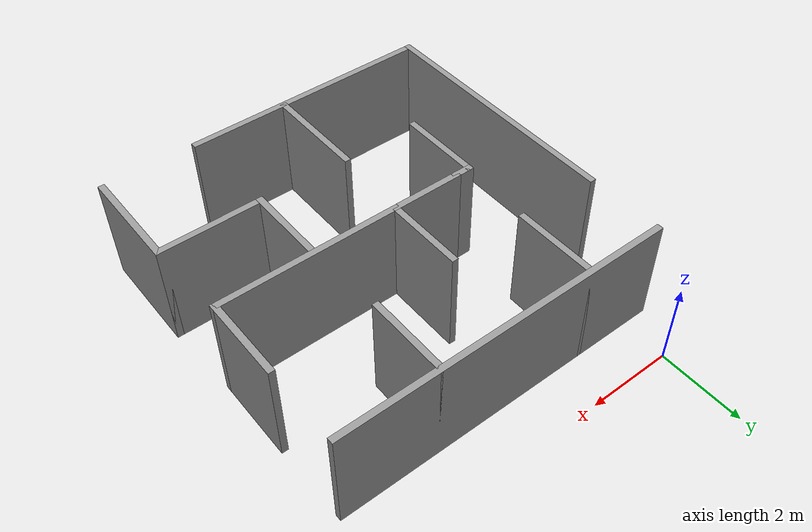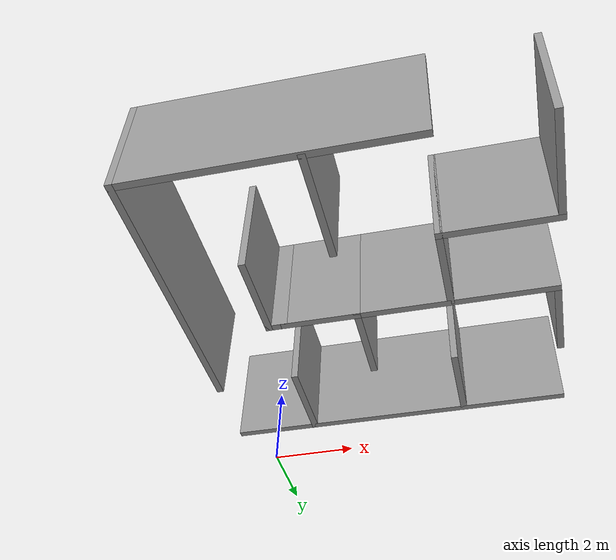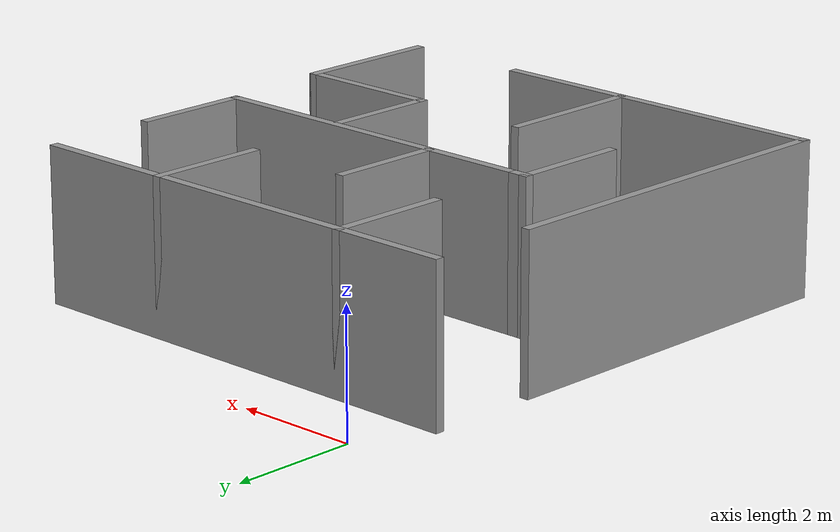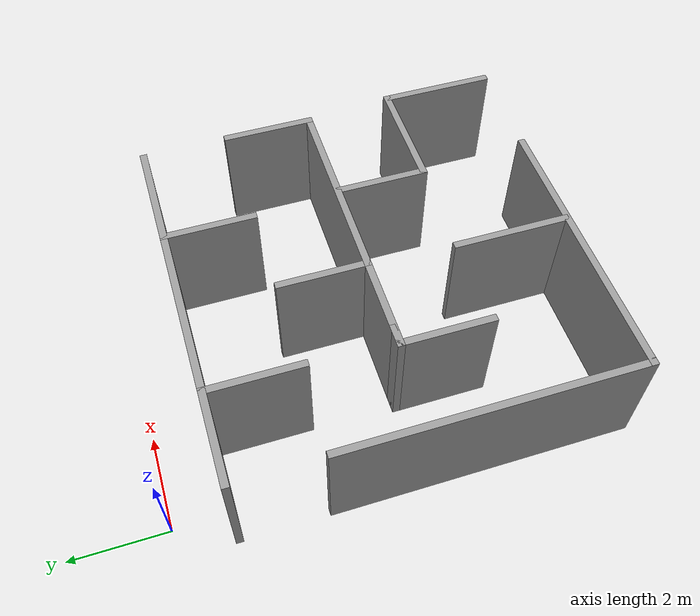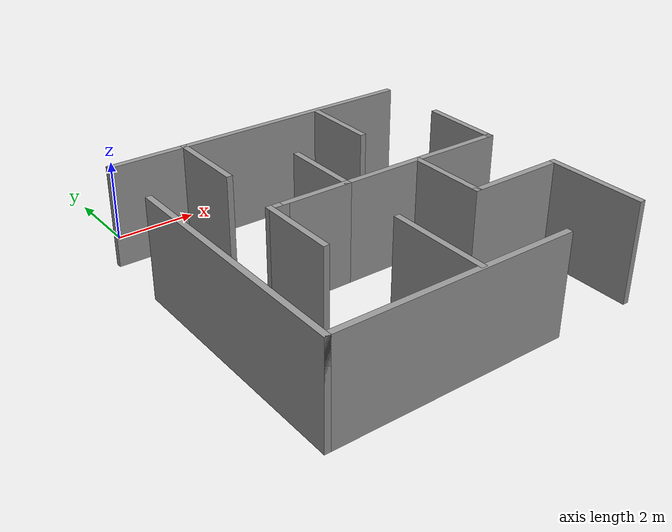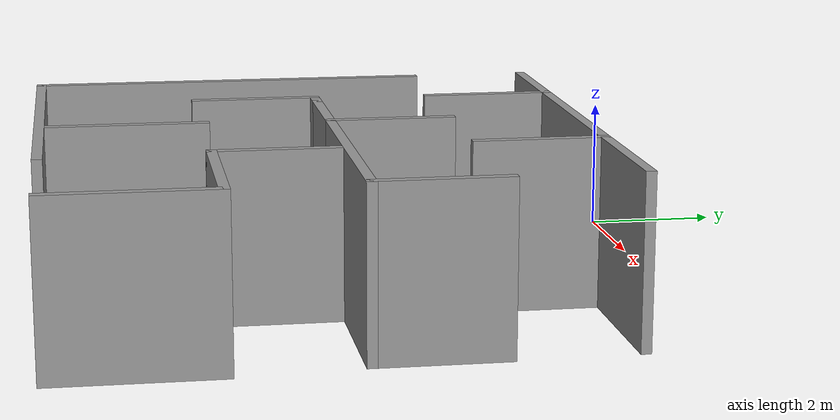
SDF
<?xml version='1.0'?>
<sdf version='1.7'>
  <model name='newmaze'>
    <pose>3.50499 -4.6025 0 0 -0 0</pose>
    <link name='Wall_0'>
      <collision name='Wall_0_Collision'>
        <geometry>
          <box>
            <size>8 0.15 2.5</size>
          </box>
        </geometry>
        <pose>0 0 1.25 0 -0 0</pose>
      </collision>
      <visual name='Wall_0_Visual'>
        <pose>0 0 1.25 0 -0 0</pose>
        <geometry>
          <box>
            <size>8 0.15 2.5</size>
          </box>
        </geometry>
        <material>
          <script>
            <uri>file://media/materials/scripts/gazebo.material</uri>
            <name>Gazebo/Grey</name>
          </script>
          <ambient>1 1 1 1</ambient>
        </material>
        <meta>
          <layer>0</layer>
        </meta>
      </visual>
      <pose>-0.099994 3.4225 0 0 -0 0</pose>
    </link>
    <link name='Wall_13'>
      <collision name='Wall_13_Collision'>
        <geometry>
          <box>
            <size>1.95374 0.15 2.5</size>
          </box>
        </geometry>
        <pose>0 0 1.25 0 -0 0</pose>
      </collision>
      <visual name='Wall_13_Visual'>
        <pose>0 0 1.25 0 -0 0</pose>
        <geometry>
          <box>
            <size>1.95374 0.15 2.5</size>
          </box>
        </geometry>
        <material>
          <script>
            <uri>file://media/materials/scripts/gazebo.material</uri>
            <name>Gazebo/Grey</name>
          </script>
          <ambient>1 1 1 1</ambient>
        </material>
        <meta>
          <layer>0</layer>
        </meta>
      </visual>
      <pose>-0.324994 0.624369 0 0 -0 -1.5708</pose>
    </link>
    <link name='Wall_15'>
      <collision name='Wall_15_Collision'>
        <geometry>
          <box>
            <size>2 0.15 2.5</size>
          </box>
        </geometry>
        <pose>0 0 1.25 0 -0 0</pose>
      </collision>
      <visual name='Wall_15_Visual'>
        <pose>0 0 1.25 0 -0 0</pose>
        <geometry>
          <box>
            <size>2 0.15 2.5</size>
          </box>
        </geometry>
        <material>
          <script>
            <uri>file://media/materials/scripts/gazebo.material</uri>
            <name>Gazebo/Grey</name>
          </script>
          <ambient>1 1 1 1</ambient>
        </material>
        <meta>
          <layer>0</layer>
        </meta>
      </visual>
      <pose>1.52501 2.4975 0 0 -0 1.5708</pose>
    </link>
    <link name='Wall_18'>
      <collision name='Wall_18_Collision'>
        <geometry>
          <box>
            <size>2 0.15 2.5</size>
          </box>
        </geometry>
        <pose>0 0 1.25 0 -0 0</pose>
      </collision>
      <visual name='Wall_18_Visual'>
        <pose>0 0 1.25 0 -0 0</pose>
        <geometry>
          <box>
            <size>2 0.15 2.5</size>
          </box>
        </geometry>
        <material>
          <script>
            <uri>file://media/materials/scripts/gazebo.material</uri>
            <name>Gazebo/Grey</name>
          </script>
          <ambient>1 1 1 1</ambient>
        </material>
        <meta>
          <layer>0</layer>
        </meta>
      </visual>
      <pose>3.87501 0.6475 0 0 -0 -1.5708</pose>
    </link>
    <link name='Wall_19'>
      <collision name='Wall_19_Collision'>
        <geometry>
          <box>
            <size>4.35 0.15 2.5</size>
          </box>
        </geometry>
        <pose>0 0 1.25 0 -0 0</pose>
      </collision>
      <visual name='Wall_19_Visual'>
        <pose>0 0 1.25 0 -0 0</pose>
        <geometry>
          <box>
            <size>4.35 0.15 2.5</size>
          </box>
        </geometry>
        <material>
          <script>
            <uri>file://media/materials/scripts/gazebo.material</uri>
            <name>Gazebo/Grey</name>
          </script>
          <ambient>1 1 1 1</ambient>
        </material>
        <meta>
          <layer>0</layer>
        </meta>
      </visual>
      <pose>1.77501 -0.2775 0 0 -0 3.14159</pose>
    </link>
    <link name='Wall_21'>
      <collision name='Wall_21_Collision'>
        <geometry>
          <box>
            <size>1.75 0.15 2.5</size>
          </box>
        </geometry>
        <pose>0 0 1.25 0 -0 0</pose>
      </collision>
      <visual name='Wall_21_Visual'>
        <pose>0 0 1.25 0 -0 0</pose>
        <geometry>
          <box>
            <size>1.75 0.15 2.5</size>
          </box>
        </geometry>
        <material>
          <script>
            <uri>file://media/materials/scripts/gazebo.material</uri>
            <name>Gazebo/Grey</name>
          </script>
          <ambient>1 1 1 1</ambient>
        </material>
        <meta>
          <layer>0</layer>
        </meta>
      </visual>
      <pose>-1.12499 -0.2775 0 0 -0 3.14159</pose>
    </link>
    <link name='Wall_22'>
      <collision name='Wall_22_Collision'>
        <geometry>
          <box>
            <size>0.5 0.15 2.5</size>
          </box>
        </geometry>
        <pose>0 0 1.25 0 -0 0</pose>
      </collision>
      <visual name='Wall_22_Visual'>
        <pose>0 0 1.25 0 -0 0</pose>
        <geometry>
          <box>
            <size>0.5 0.15 2.5</size>
          </box>
        </geometry>
        <material>
          <script>
            <uri>file://media/materials/scripts/gazebo.material</uri>
            <name>Gazebo/Grey</name>
          </script>
          <ambient>1 1 1 1</ambient>
        </material>
        <meta>
          <layer>0</layer>
        </meta>
      </visual>
      <pose>-2.09999 -0.2775 0 0 -0 3.14159</pose>
    </link>
    <link name='Wall_23'>
      <collision name='Wall_23_Collision'>
        <geometry>
          <box>
            <size>2 0.15 2.5</size>
          </box>
        </geometry>
        <pose>0 0 1.25 0 -0 0</pose>
      </collision>
      <visual name='Wall_23_Visual'>
        <pose>0 0 1.25 0 -0 0</pose>
        <geometry>
          <box>
            <size>2 0.15 2.5</size>
          </box>
        </geometry>
        <material>
          <script>
            <uri>file://media/materials/scripts/gazebo.material</uri>
            <name>Gazebo/Grey</name>
          </script>
          <ambient>1 1 1 1</ambient>
        </material>
        <meta>
          <layer>0</layer>
        </meta>
      </visual>
      <pose>-2.27499 -1.2025 0 0 -0 -1.5708</pose>
    </link>
    <link name='Wall_25'>
      <collision name='Wall_25_Collision'>
        <geometry>
          <box>
            <size>2.5 0.15 2.5</size>
          </box>
        </geometry>
        <pose>0 0 1.25 0 -0 0</pose>
      </collision>
      <visual name='Wall_25_Visual'>
        <pose>0 0 1.25 0 -0 0</pose>
        <geometry>
          <box>
            <size>2.5 0.15 2.5</size>
          </box>
        </geometry>
        <material>
          <script>
            <uri>file://media/materials/scripts/gazebo.material</uri>
            <name>Gazebo/Grey</name>
          </script>
          <ambient>1 1 1 1</ambient>
        </material>
        <meta>
          <layer>0</layer>
        </meta>
      </visual>
      <pose>-0.424994 -3.3025 0 0 -0 -1.5708</pose>
    </link>
    <link name='Wall_27'>
      <collision name='Wall_27_Collision'>
        <geometry>
          <box>
            <size>2 0.15 2.5</size>
          </box>
        </geometry>
        <pose>0 0 1.25 0 -0 0</pose>
      </collision>
      <visual name='Wall_27_Visual'>
        <pose>0 0 1.25 0 -0 0</pose>
        <geometry>
          <box>
            <size>2 0.15 2.5</size>
          </box>
        </geometry>
        <material>
          <script>
            <uri>file://media/materials/scripts/gazebo.material</uri>
            <name>Gazebo/Grey</name>
          </script>
          <ambient>1 1 1 1</ambient>
        </material>
        <meta>
          <layer>0</layer>
        </meta>
      </visual>
      <pose>1.67499 -1.24488 0 0 -0 -1.5708</pose>
    </link>
    <link name='Wall_28'>
      <collision name='Wall_28_Collision'>
        <geometry>
          <box>
            <size>2.5 0.15 2.5</size>
          </box>
        </geometry>
        <pose>0 0 1.25 0 -0 0</pose>
      </collision>
      <visual name='Wall_28_Visual'>
        <pose>0 0 1.25 0 -0 0</pose>
        <geometry>
          <box>
            <size>2.5 0.15 2.5</size>
          </box>
        </geometry>
        <material>
          <script>
            <uri>file://media/materials/scripts/gazebo.material</uri>
            <name>Gazebo/Grey</name>
          </script>
          <ambient>1 1 1 1</ambient>
        </material>
        <meta>
          <layer>0</layer>
        </meta>
      </visual>
      <pose>2.84999 -2.16988 0 0 -0 0</pose>
    </link>
    <link name='Wall_29'>
      <collision name='Wall_29_Collision'>
        <geometry>
          <box>
            <size>2.5 0.15 2.5</size>
          </box>
        </geometry>
        <pose>0 0 1.25 0 -0 0</pose>
      </collision>
      <visual name='Wall_29_Visual'>
        <pose>0 0 1.25 0 -0 0</pose>
        <geometry>
          <box>
            <size>2.5 0.15 2.5</size>
          </box>
        </geometry>
        <material>
          <script>
            <uri>file://media/materials/scripts/gazebo.material</uri>
            <name>Gazebo/Grey</name>
          </script>
          <ambient>1 1 1 1</ambient>
        </material>
        <meta>
          <layer>0</layer>
        </meta>
      </visual>
      <pose>4.02499 -3.34488 0 0 -0 -1.5708</pose>
    </link>
    <link name='Wall_3'>
      <collision name='Wall_3_Collision'>
        <geometry>
          <box>
            <size>6.25 0.15 2.5</size>
          </box>
        </geometry>
        <pose>0 0 1.25 0 -0 0</pose>
      </collision>
      <visual name='Wall_3_Visual'>
        <pose>0 0 1.25 0 -0 0</pose>
        <geometry>
          <box>
            <size>6.25 0.15 2.5</size>
          </box>
        </geometry>
        <material>
          <script>
            <uri>file://media/materials/scripts/gazebo.material</uri>
            <name>Gazebo/Grey</name>
          </script>
          <ambient>1 1 1 1</ambient>
        </material>
        <meta>
          <layer>0</layer>
        </meta>
      </visual>
      <pose>-4.02499 -1.4775 0 0 -0 -1.5708</pose>
    </link>
    <link name='Wall_5'>
      <collision name='Wall_5_Collision'>
        <geometry>
          <box>
            <size>6 0.15 2.5</size>
          </box>
        </geometry>
        <pose>0 0 1.25 0 -0 0</pose>
      </collision>
      <visual name='Wall_5_Visual'>
        <pose>0 0 1.25 0 -0 0</pose>
        <geometry>
          <box>
            <size>6 0.15 2.5</size>
          </box>
        </geometry>
        <material>
          <script>
            <uri>file://media/materials/scripts/gazebo.material</uri>
            <name>Gazebo/Grey</name>
          </script>
          <ambient>1 1 1 1</ambient>
        </material>
        <meta>
          <layer>0</layer>
        </meta>
      </visual>
      <pose>-1.09999 -4.5275 0 0 -0 0</pose>
    </link>
    <link name='Wall_8'>
      <collision name='Wall_8_Collision'>
        <geometry>
          <box>
            <size>2.04626 0.15 2.5</size>
          </box>
        </geometry>
        <pose>0 0 1.25 0 -0 0</pose>
      </collision>
      <visual name='Wall_8_Visual'>
        <pose>0 0 1.25 0 -0 0</pose>
        <geometry>
          <box>
            <size>2.04626 0.15 2.5</size>
          </box>
        </geometry>
        <material>
          <script>
            <uri>file://media/materials/scripts/gazebo.material</uri>
            <name>Gazebo/Grey</name>
          </script>
          <ambient>1 1 1 1</ambient>
        </material>
        <meta>
          <layer>0</layer>
        </meta>
      </visual>
      <pose>-2.17499 2.47437 0 0 -0 1.5708</pose>
    </link>
    <static>1</static>
  </model>
</sdf>
